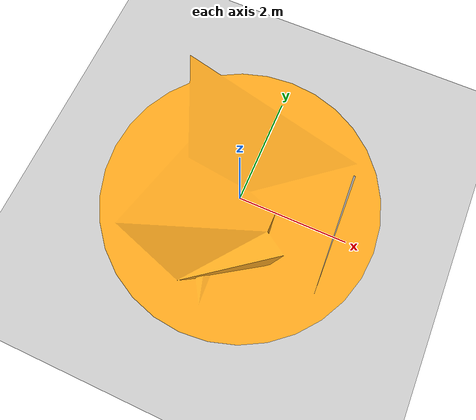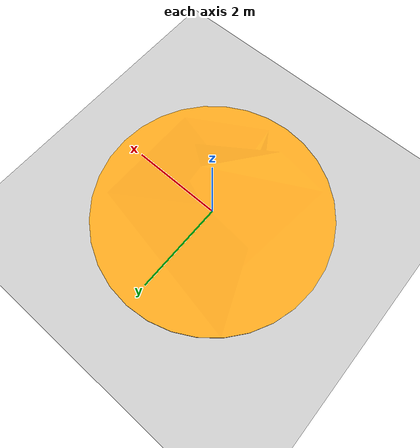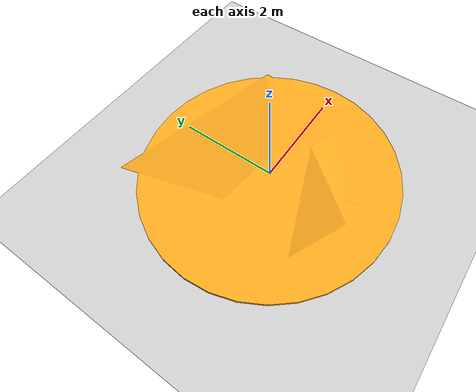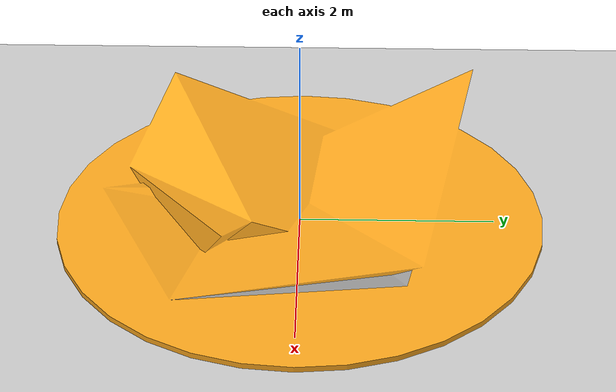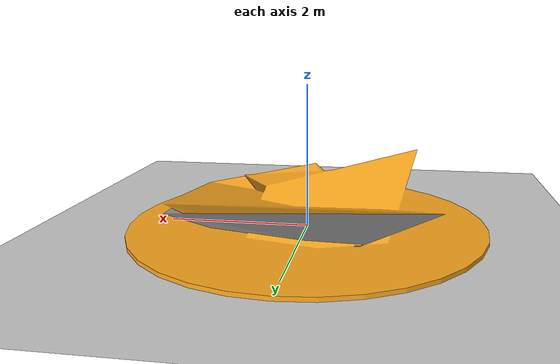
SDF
<?xml version="1.0"?>
<sdf version="1.5">
  <world name="dropzone_obstructed_world">
    <include>
      <uri>model://ground_plane</uri>
    </include>
    <include>
      <uri>model://sun</uri>
    </include>
    <include><!-- DRONEPONTOS -->
      <static>true</static>
      <uri>model://dropzone_obstructed</uri>
      <name>dropzone_obstructed</name>
      <pose>0 0 0 0 0 0</pose>
    </include>
  </world>
</sdf>

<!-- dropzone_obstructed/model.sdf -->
<sdf version="1.6">
  <model name="new_H">
    <static>true</static>
    <link name="dropzone">
      <visual name="dropzone">
        <cast_shadows>true</cast_shadows>
        <geometry>
          <mesh>
            <uri>model://dropzone_obstructed/meshes/dropzone.stl</uri>
          </mesh>
        </geometry>
        <material>
          <lighting>1</lighting>
          <script>
              <uri>file://media/materials/scripts/gazebo.material</uri>
              <name>Gazebo/Grey</name>
          </script>
          <shader type='vertex'>
              <normal_map>__default__</normal_map>
          </shader>
          <ambient>1 0 0 1</ambient>
          <diffuse>0.99 0.66 0.12 1</diffuse>
          <specular>0.01 0.01 0.01 1</specular>
          <emissive>1 0 0 1</emissive>
      </material>
      </visual>
      <collision name="collision_dropzone_obstructed">
        <geometry>
          <mesh>
            <uri>model://dropzone_obstructed/meshes/dropzone_obstructed.stl</uri>
          </mesh>
        </geometry>
      </collision>
    </link>

    <link name="obstruction">
      <visual name="obstruction">
        <cast_shadows>true</cast_shadows>
        <geometry>
          <mesh>
            <uri>model://dropzone_obstructed/meshes/obstruction.stl</uri>
          </mesh>
        </geometry>
        <material>
          <lighting>1</lighting>
          <script>
              <uri>file://media/materials/scripts/gazebo.material</uri>
              <name>Gazebo/Grey</name>
          </script>
          <shader type='vertex'>
              <normal_map>__default__</normal_map>
          </shader>
      </material>
      </visual>
    </link>
    <plugin name ="getDropzonePositions" filename="libgetDropzonePositions.so" />
  </model>
</sdf>
